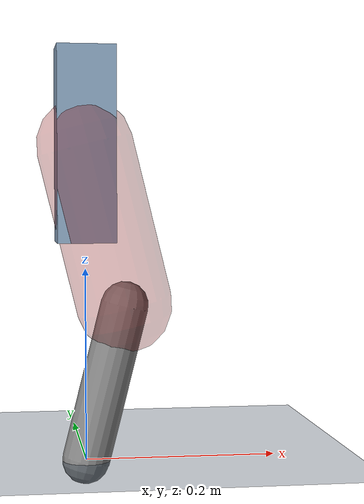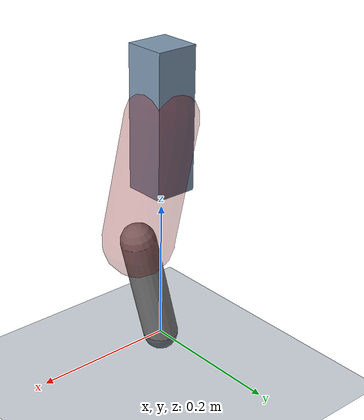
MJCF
<mujoco model="Hopper2D">
	<compiler inertiafromgeom="true" angle="radian" />
	<option timestep="0.001" integrator="implicit" cone="elliptic" solver="Newton" tolerance="1e-10" />

	<default>
		<geom contype="1" conaffinity="1" condim="3" friction="2 0.005 0.0001" solref="0.005 1" />
		<joint limited="true" damping="0.1" />
	</default>

	<asset>
		<texture name="skybox" type="skybox" builtin="gradient" rgb1=".4 .6 .8" rgb2="0 0 0" width="800" height="800" />
		<texture name="grid" type="2d" builtin="checker" rgb1=".1 .2 .3" rgb2=".2 .3 .4" width="300" height="300" mark="edge" markrgb=".2 .3 .4" />
		<material name="ground" texture="grid" texrepeat="1 1" texuniform="true" reflectance="0.1" />
		<material name="leg" rgba="0.5 0.6 0.7 1" />
	</asset>

	<worldbody>

		<geom name="floor" type="plane" size="5 5 0.25" material="ground" />

		<light directional="false" diffuse="0.8 0.8 0.8" specular="0.3 0.3 0.3" pos="0 0 2" dir="0 0 -1" />
		<light mode="targetbodycom" target="base" directional="false" diffuse="0.8 0.8 0.8" specular="0.3 0.3 0.3" pos="0 0 2" dir="0 0 -1" />

		<camera name="fixed" pos="0 -2 1" xyaxes="1 0 0 0 0 1" />
		<camera name="tracking" mode="trackcom" pos="0 -3 1" />

		<body name="root" pos="0 0 0.32743813043400427">
			<joint name="slide_x" type="slide" axis="1 0 0" range="-100 100" />
			<joint name="slide_z" type="slide" axis="0 0 1" range="0 10" />

			<body name="base" pos="0 0 0">
				<geom name="torso" type="box" size="0.03 0.03 0.1" mass="2.148" material="leg" />

				<body name="link1" pos="0 0 0" euler="0 1.3297607988427984 0">
					<joint type="hinge" axis="0 -1 0" pos="0 0 0" name="hinge1" limited="true" range="-3.14 3.14" stiffness="0" damping="0.1" />
					<geom name="thigh" type="capsule" fromto="0 0 0 0.17078054010315888 0 0" size="0.05" rgba="0.5 0 0 0.3" mass="0.6581732962475813" />

					<body name="link2" pos="0.17078054010315888 0 0" euler="0 0.4881568623426985 0">
						<joint type="hinge" axis="0 -1 0" pos="0 0 0" name="hinge2" limited="true" range="-3.14 3.14" stiffness="0" damping="0.1" />
						<geom name="shank" type="capsule" fromto="0 0 0 0.16665759033084543 0 0" size="0.025" mass="0.3723918312977609" />

					</body>
				</body>
			</body>
		</body>
	</worldbody>

	<actuator>
		<motor name="torque1" joint="hinge1" ctrlrange="-71.35304586850748 71.35304586850748" ctrllimited="true" gear="1" />
		<motor name="torque2" joint="hinge2" ctrlrange="-22.434428406554673 22.434428406554673" ctrllimited="true" gear="1" />
	</actuator>
</mujoco>
